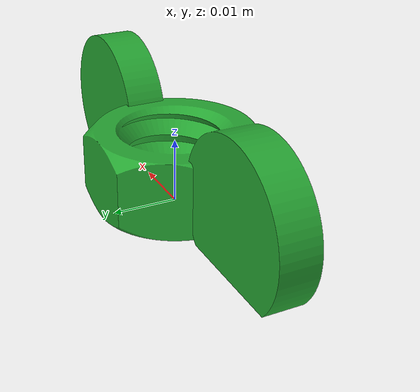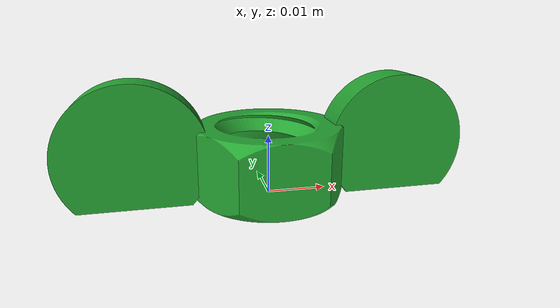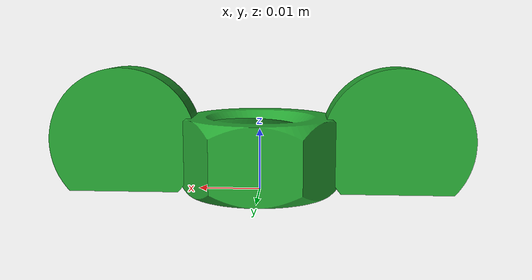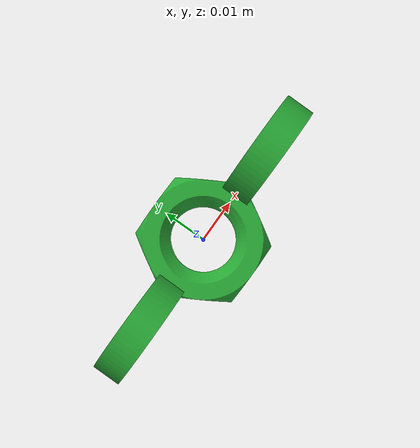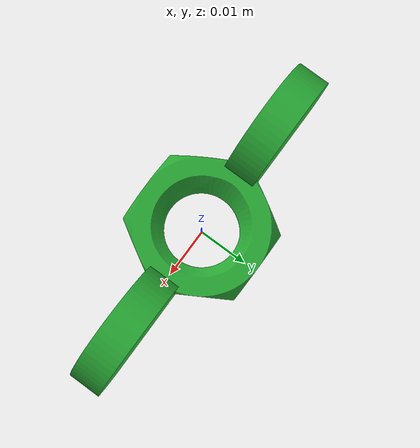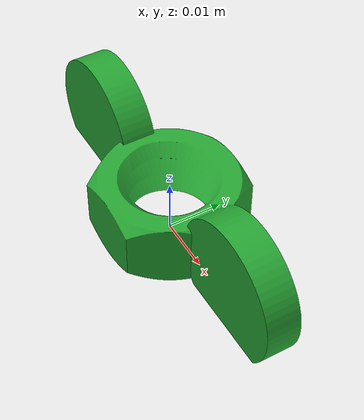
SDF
<?xml version="1.0"?>
<sdf version="1.4">
         <model name="wingnut_6x9">
             <static>true</static>
             <link name="link">
                 <pose>0 0 0 0 0 0</pose>
                 <inertial>
                     <pose>-1.84574e-05 -2.9e-07 0.0078867628 0 0 0 </pose>
                     <mass>8e-06</mass>
                     <inertia>
                         <ixx>3.9779170053e-10</ixx>
                         <ixy>-3.23836e-15</ixy>
                         <ixz>-2.8511706e-13</ixz>
                         <iyy>2.86240655577e-09</iyy>
                         <iyz>5.8524155e-13</iyz>
                         <izz>2.8800700907e-09</izz>
                     </inertia>
                 </inertial>

                 <visual name="visual">
                     <geometry>
                         <mesh>
                             <uri>model://wingnut_6x9/meshes/wingnut_6x9.stl</uri>
                         </mesh>
                     </geometry>
                     <material>
                         <script>
                             <uri>file://media/materials/scripts/gazebo.material</uri>
                             <name>Gazebo/Green</name>
                         </script>
                     </material>
                 </visual>

                 <collision name="collision">
                     <geometry>
                         <mesh>
                             <uri>model://wingnut_6x9/meshes/wingnut_6x9.stl</uri>
                         </mesh>
                     </geometry>
                 </collision>
             </link>
         </model>
     </sdf>
